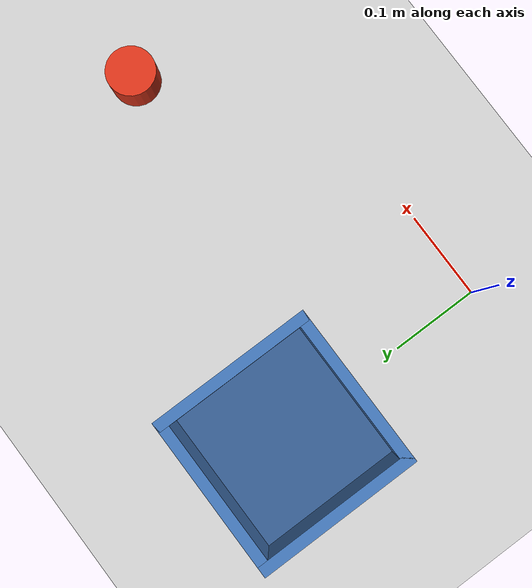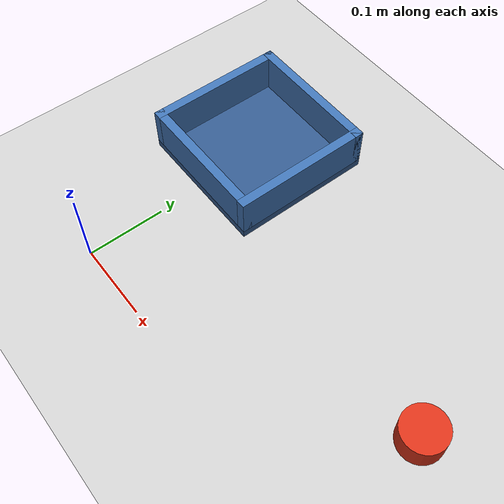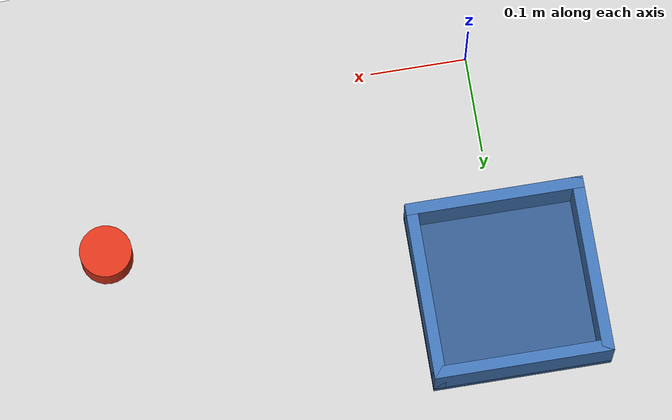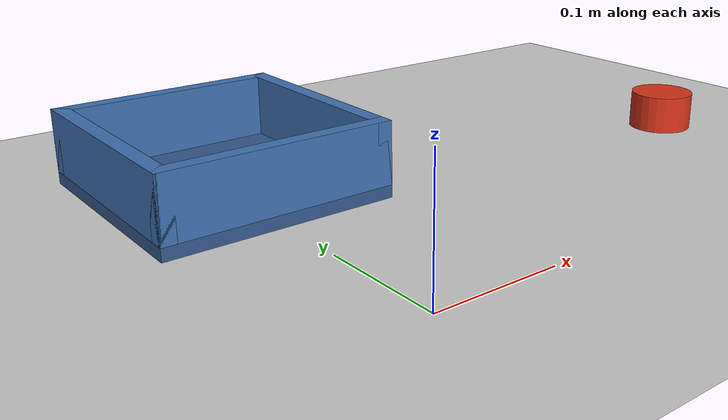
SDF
<?xml version="1.0"?>
<sdf version="1.6">
  <world name="default">

    <physics name="1ms" type="ignored">
      <max_step_size>0.001</max_step_size>
      <real_time_factor>1.0</real_time_factor>
    </physics>

    <gravity>0 0 0</gravity>

    <plugin filename="ignition-gazebo-physics-system"
            name="ignition::gazebo::systems::Physics"/>
    <plugin filename="ignition-gazebo-user-commands-system"
            name="ignition::gazebo::systems::UserCommands"/>
    <plugin filename="ignition-gazebo-scene-broadcaster-system"
            name="ignition::gazebo::systems::SceneBroadcaster"/>
    <plugin filename="ignition-gazebo-sensors-system"
            name="ignition::gazebo::systems::Sensors">
      <render_engine>ogre2</render_engine>
    </plugin>

    <light type="directional" name="sun">
      <cast_shadows>true</cast_shadows>
      <pose>0 0 10 0 0 0</pose>
      <diffuse>0.8 0.8 0.8 1</diffuse>
      <specular>0.2 0.2 0.2 1</specular>
      <attenuation>
        <range>1000</range>
        <constant>0.9</constant>
        <linear>0.01</linear>
        <quadratic>0.001</quadratic>
      </attenuation>
      <direction>-0.5 0.1 -0.9</direction>
    </light>

    <model name="ground_plane">
      <static>true</static>
      <link name="link">
        <collision name="collision">
          <geometry>
            <plane>
              <normal>0 0 1</normal>
              <size>100 100</size>
            </plane>
          </geometry>
        </collision>
        <visual name="visual">
          <geometry>
            <plane>
              <normal>0 0 1</normal>
              <size>100 100</size>
            </plane>
          </geometry>
          <material>
            <ambient>0.8 0.8 0.8 1</ambient>
            <diffuse>0.8 0.8 0.8 1</diffuse>
            <specular>0.8 0.8 0.8 1</specular>
          </material>
        </visual>
      </link>
    </model>

    <!-- ===================== Caméra fixe externe (eye-to-hand) ===================== -->
    <!-- Position : devant le bras (+x), surélevée, regardant vers la base et l'espace
         de travail. À ajuster visuellement (c'est le but de l'étape 1). -->
    <model name="front_camera_stand">
      <static>true</static>
      <pose>0.9 0.45 0.70 0 0.53 3.66519</pose>
      <link name="camera_link">
        <!-- Pas de visuel cosmétique : il projetterait une ombre dans le champ.
             La caméra reste repérable dans le GUI via son frustum (visualize=true). -->
        <sensor name="front_camera" type="camera">
          <camera>
            <horizontal_fov>1.00</horizontal_fov>
            <image>
              <width>640</width>
              <height>480</height>
              <format>R8G8B8</format>
            </image>
            <clip>
              <near>0.05</near>
              <far>10.0</far>
            </clip>
          </camera>
          <always_on>1</always_on>
          <update_rate>30</update_rate>
          <visualize>true</visualize>
          <topic>front_camera/image</topic>
        </sensor>
      </link>
    </model>

    <!-- ===================== Objet à saisir : roulette (inline) ===================== -->
    <model name="roulette">
      <pose>0.4 0.15 0.016 0 0 0</pose>
      <link name="link">
        <gravity>false</gravity>
        <kinematic>true</kinematic>
        <inertial>
          <mass>0.05</mass>
          <inertia>
            <ixx>1.372e-5</ixx>
            <iyy>1.372e-5</iyy>
            <izz>1.891e-5</izz>
            <ixy>0</ixy>
            <ixz>0</ixz>
            <iyz>0</iyz>
          </inertia>
        </inertial>
        <collision name="collision">
          <geometry>
            <cylinder>
              <radius>0.027</radius>
              <length>0.032</length>
            </cylinder>
          </geometry>
          <surface>
            <friction>
              <ode>
                <mu>1.0</mu>
                <mu2>1.0</mu2>
              </ode>
            </friction>
          </surface>
        </collision>
        <visual name="visual">
          <geometry>
            <cylinder>
              <radius>0.027</radius>
              <length>0.032</length>
            </cylinder>
          </geometry>
          <material>
            <ambient>0.85 0.20 0.10 1</ambient>
            <diffuse>0.85 0.20 0.10 1</diffuse>
            <specular>0.2 0.2 0.2 1</specular>
          </material>
        </visual>
      </link>
    </model>

    <!-- ===================== Bac de dépôt (place) ===================== -->
    <model name="bac">
      <static>true</static>
      <pose>0.0 0.25 0 0 0 0</pose>
      <link name="link">
        <!-- Sol du bac -->
        <collision name="sol_collision">
          <pose>0 0 0.005 0 0 0</pose>
          <geometry><box><size>0.184 0.184 0.01</size></box></geometry>
        </collision>
        <visual name="sol_visual">
          <pose>0 0 0.005 0 0 0</pose>
          <geometry><box><size>0.184 0.184 0.01</size></box></geometry>
          <material>
            <ambient>0.20 0.35 0.55 1</ambient>
            <diffuse>0.20 0.35 0.55 1</diffuse>
            <specular>0.1 0.1 0.1 1</specular>
          </material>
        </visual>

        <!-- Mur +X -->
        <collision name="mur_xp_collision">
          <pose>0.086 0 0.035 0 0 0</pose>
          <geometry><box><size>0.012 0.184 0.05</size></box></geometry>
        </collision>
        <visual name="mur_xp_visual">
          <pose>0.086 0 0.035 0 0 0</pose>
          <geometry><box><size>0.012 0.184 0.05</size></box></geometry>
          <material>
            <ambient>0.25 0.45 0.70 1</ambient>
            <diffuse>0.25 0.45 0.70 1</diffuse>
          </material>
        </visual>

        <!-- Mur -X -->
        <collision name="mur_xm_collision">
          <pose>-0.086 0 0.035 0 0 0</pose>
          <geometry><box><size>0.012 0.184 0.05</size></box></geometry>
        </collision>
        <visual name="mur_xm_visual">
          <pose>-0.086 0 0.035 0 0 0</pose>
          <geometry><box><size>0.012 0.184 0.05</size></box></geometry>
          <material>
            <ambient>0.25 0.45 0.70 1</ambient>
            <diffuse>0.25 0.45 0.70 1</diffuse>
          </material>
        </visual>

        <!-- Mur +Y -->
        <collision name="mur_yp_collision">
          <pose>0 0.086 0.035 0 0 0</pose>
          <geometry><box><size>0.184 0.012 0.05</size></box></geometry>
        </collision>
        <visual name="mur_yp_visual">
          <pose>0 0.086 0.035 0 0 0</pose>
          <geometry><box><size>0.184 0.012 0.05</size></box></geometry>
          <material>
            <ambient>0.25 0.45 0.70 1</ambient>
            <diffuse>0.25 0.45 0.70 1</diffuse>
          </material>
        </visual>

        <!-- Mur -Y -->
        <collision name="mur_ym_collision">
          <pose>0 -0.086 0.035 0 0 0</pose>
          <geometry><box><size>0.184 0.012 0.05</size></box></geometry>
        </collision>
        <visual name="mur_ym_visual">
          <pose>0 -0.086 0.035 0 0 0</pose>
          <geometry><box><size>0.184 0.012 0.05</size></box></geometry>
          <material>
            <ambient>0.25 0.45 0.70 1</ambient>
            <diffuse>0.25 0.45 0.70 1</diffuse>
          </material>
        </visual>
      </link>
    </model>

  </world>
</sdf>
